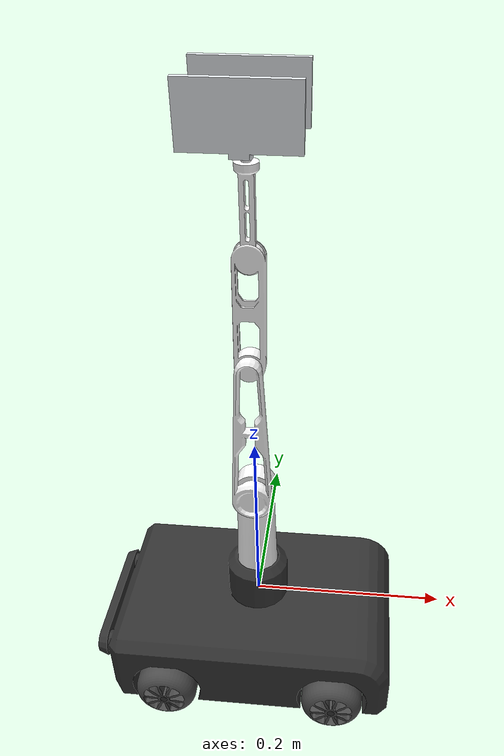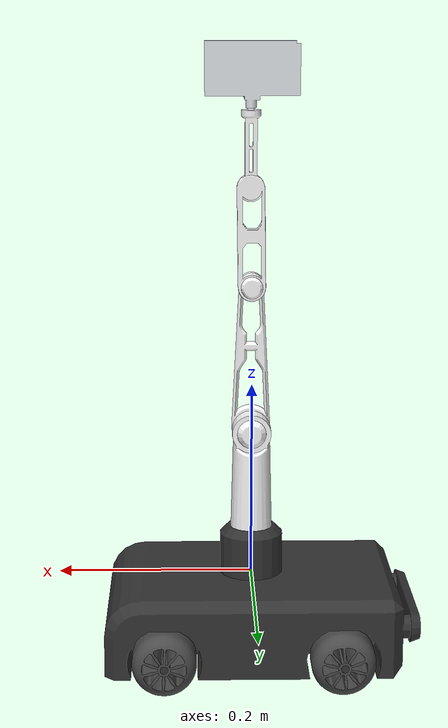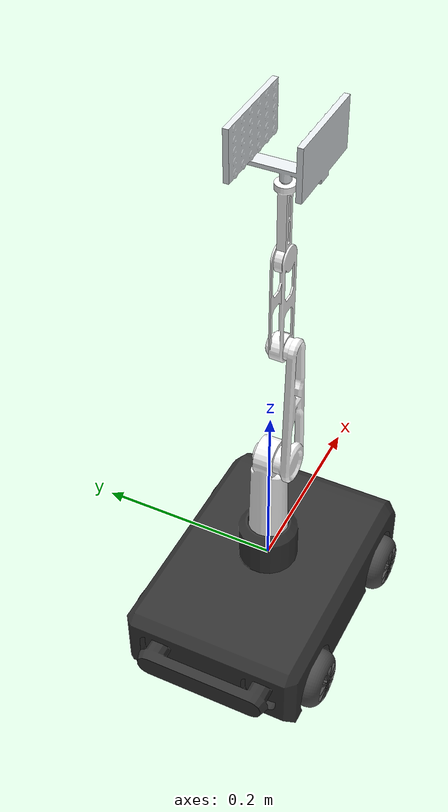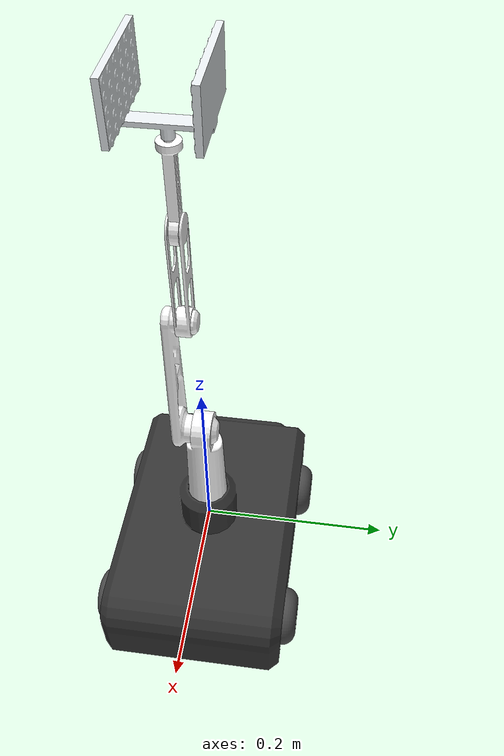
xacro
<?xml version="1.0" ?>
<robot
  name="project2_pkg" xmlns:xacro="http://ros.org/wiki/xacro">

  <xacro:arg name="controller_config_path" default=""/>

  <xacro:macro name="chassi_color">
    <visual>
    <material>
        <ambient>0.8 0.558823529411765 0.1 1</ambient>
        <diffuse>0.8 0.558823529411765 0.1 1</diffuse>
        <specular>0.1 0.1 0.1 1</specular>
        <emissive>0 0 0 0</emissive>
    </material>
    </visual>
  </xacro:macro>

  <xacro:macro name="wheel_color">
    <visual>
    <material>
        <ambient>0.1 0.1 0.1 1</ambient>
        <diffuse>0.1 0.1 0.1 1</diffuse>
        <specular>0.1 0.1 0.1 1</specular>
        <emissive>0 0 0 0</emissive>
    </material>
    </visual>
  </xacro:macro>

  <xacro:macro name="link1_color">
    <visual>
    <material>
        <ambient>0.8 0.1 0.1 1</ambient>
        <diffuse>0.8 0.1 0.1 1</diffuse>
        <specular>0.1 0.1 0.1 1</specular>
        <emissive>0 0 0 0</emissive>
    </material>
    </visual>
  </xacro:macro>

  <xacro:macro name="link2_color">
    <visual>
    <material>
        <ambient>0.1 0.7 0.7 1</ambient>
        <diffuse>0.1 0.7 0.7 1</diffuse>
        <specular>0.1 0.1 0.1 1</specular>
        <emissive>0 0 0 0</emissive>
    </material>
    </visual>
  </xacro:macro>

  <link
    name="chassi">
    <inertial>
      <origin
        xyz="-0.00273957249813026 0 -0.0358542729676732"
        rpy="0 0 0" />
      <mass
        value="28.1975496713599" />
      <inertia
        ixx="0.0967682251741125"
        ixy="-6.20855073866151E-18"
        ixz="0.00154816882794152"
        iyy="0.213605558592681"
        iyz="-9.22777957284755E-19"
        izz="0.27721568675433" />
    </inertial>
    <visual>
      <origin
        xyz="0 0 0"
        rpy="0 0 0" />
      <geometry>
        <mesh
          filename="package://project2_pkg/meshes/chassi.STL" />
      </geometry>
      <material
        name="">
        <color
          rgba="0.2 0.2 0.2 1" />
      </material>
    </visual>
    <collision>
      <origin
        xyz="0 0 0"
        rpy="0 0 0" />
      <geometry>
        <mesh
          filename="package://project2_pkg/meshes/chassi.STL" />
      </geometry>
    </collision>
  </link>
  <link
    name="flw">
    <inertial>
      <origin
        xyz="-2.08166817117217E-16 -3.92047505570758E-16 -0.025"
        rpy="0 0 0" />
      <mass
        value="0.109315820418966" />
      <inertia
        ixx="5.08403848301778E-05"
        ixy="-1.41368946125236E-21"
        ixz="-4.88406022657881E-20"
        iyy="5.08403848301778E-05"
        iyz="-1.04374504192198E-20"
        izz="6.65918325303455E-05" />
    </inertial>
    <visual>
      <origin
        xyz="0 0 0"
        rpy="0 0 0" />
      <geometry>
        <mesh
          filename="package://project2_pkg/meshes/flw.STL" />
      </geometry>
      <material
        name="">
        <color
          rgba="0.298039215686275 0.298039215686275 0.298039215686275 1" />
      </material>
    </visual>
    <collision>
      <origin xyz="0 0 0" rpy="0 0 0" />
      <geometry>
        <mesh filename="package://project2_pkg/meshes/flw.STL" />
      </geometry>
      <!-- Added friction surface -->
      <surface>
        <friction>
          <ode>
            <mu>1.0</mu>
            <mu2>5.0</mu2>
            <fdir1>0 0 0</fdir1>
            <slip1>0.0</slip1>
            <slip2>0.0</slip2>
          </ode>
          <torsional>
            <coefficient>1.0</coefficient>
            <patch_radius>0.0</patch_radius>
            <surface_radius>0.0</surface_radius>
            <use_patch_radius>true</use_patch_radius>
            <ode>
              <slip>0.0</slip>
            </ode>
          </torsional>
        </friction>
        <contact>
          <ode>
            <soft_cfm>0</soft_cfm>
            <soft_erp>0.2</soft_erp>
            <kp>1e9</kp>
            <kd>1.0</kd>
            <max_vel>0.1</max_vel>
            <min_depth>0.001</min_depth>
          </ode>
        </contact>
        <bounce>
          <restitution_coefficient>0</restitution_coefficient>
          <threshold>1e6</threshold>
        </bounce>
      </surface>
    </collision>
  </link>
  <link
    name="rlw">
    <inertial>
      <origin
        xyz="-3.60822483003176E-16 -2.4459601011273E-16 -0.025"
        rpy="0 0 0" />
      <mass
        value="0.109315820418966" />
      <inertia
        ixx="5.08403848301778E-05"
        ixy="-4.47128279588246E-22"
        ixz="-4.70707831224661E-20"
        iyy="5.08403848301778E-05"
        iyz="1.91692662381799E-20"
        izz="6.65918325303455E-05" />
    </inertial>
    <visual>
      <origin
        xyz="0 0 0"
        rpy="0 0 0" />
      <geometry>
        <mesh
          filename="package://project2_pkg/meshes/rlw.STL" />
      </geometry>
      <material
        name="">
        <color
          rgba="0.298039215686275 0.298039215686275 0.298039215686275 1" />
      </material>
    </visual>
    <collision>
      <origin xyz="0 0 0" rpy="0 0 0" />
      <geometry>
        <mesh filename="package://project2_pkg/meshes/rlw.STL" />
      </geometry>
      <!-- Added friction surface -->
      <surface>
        <friction>
          <ode>
            <mu>1.0</mu>
            <mu2>5.0</mu2>
            <fdir1>0 0 0</fdir1>
            <slip1>0.0</slip1>
            <slip2>0.0</slip2>
          </ode>
          <torsional>
            <coefficient>1.0</coefficient>
            <patch_radius>0.0</patch_radius>
            <surface_radius>0.0</surface_radius>
            <use_patch_radius>true</use_patch_radius>
            <ode>
              <slip>0.0</slip>
            </ode>
          </torsional>
        </friction>
        <contact>
          <ode>
            <soft_cfm>0</soft_cfm>
            <soft_erp>0.2</soft_erp>
            <kp>1e9</kp>
            <kd>1.0</kd>
            <max_vel>0.1</max_vel>
            <min_depth>0.001</min_depth>
          </ode>
        </contact>
        <bounce>
          <restitution_coefficient>0</restitution_coefficient>
          <threshold>1e6</threshold>
        </bounce>
      </surface>
    </collision>
  </link>
  <link
    name="rrw">
    <inertial>
      <origin
        xyz="9.71445146547012E-17 -4.26741975090295E-16 0.025"
        rpy="0 0 0" />
      <mass
        value="0.109315820418966" />
      <inertia
        ixx="5.08403848301778E-05"
        ixy="-9.22254748831782E-21"
        ixz="-4.34376393997599E-20"
        iyy="5.08403848301778E-05"
        iyz="1.89041222569318E-20"
        izz="6.65918325303455E-05" />
    </inertial>
    <visual>
      <origin
        xyz="0 0 0"
        rpy="0 0 0" />
      <geometry>
        <mesh
          filename="package://project2_pkg/meshes/rrw.STL" />
      </geometry>
      <material
        name="">
        <color
          rgba="0.298039215686275 0.298039215686275 0.298039215686275 1" />
      </material>
    </visual>
    <collision>
      <origin xyz="0 0 0" rpy="0 0 0" />
      <geometry>
        <mesh filename="package://project2_pkg/meshes/rrw.STL" />
      </geometry>
      <!-- Added friction surface -->
      <surface>
        <friction>
          <ode>
            <mu>1.0</mu>
            <mu2>5.0</mu2>
            <fdir1>0 0 0</fdir1>
            <slip1>0.0</slip1>
            <slip2>0.0</slip2>
          </ode>
          <torsional>
            <coefficient>1.0</coefficient>
            <patch_radius>0.0</patch_radius>
            <surface_radius>0.0</surface_radius>
            <use_patch_radius>true</use_patch_radius>
            <ode>
              <slip>0.0</slip>
            </ode>
          </torsional>
        </friction>
        <contact>
          <ode>
            <soft_cfm>0</soft_cfm>
            <soft_erp>0.2</soft_erp>
            <kp>1e9</kp>
            <kd>1.0</kd>
            <max_vel>0.1</max_vel>
            <min_depth>0.001</min_depth>
          </ode>
        </contact>
        <bounce>
          <restitution_coefficient>0</restitution_coefficient>
          <threshold>1e6</threshold>
        </bounce>
      </surface>
    </collision>
  </link>
  <link
    name="frw">
    <inertial>
      <origin
        xyz="4.16333634234434E-16 -1.07552855510562E-16 0.025"
        rpy="0 0 0" />
      <mass
        value="0.109315820418966" />
      <inertia
        ixx="5.08403848301778E-05"
        ixy="-6.75672164286764E-22"
        ixz="-3.81073407790736E-20"
        iyy="5.08403848301778E-05"
        iyz="-3.21509152907343E-20"
        izz="6.65918325303455E-05" />
    </inertial>
    <visual>
      <origin
        xyz="0 0 0"
        rpy="0 0 0" />
      <geometry>
        <mesh
          filename="package://project2_pkg/meshes/frw.STL" />
      </geometry>
      <material
        name="">
        <color
          rgba="0.298039215686275 0.298039215686275 0.298039215686275 1" />
      </material>
    </visual>
    <collision>
      <origin xyz="0 0 0" rpy="0 0 0" />
      <geometry>
        <mesh filename="package://project2_pkg/meshes/frw.STL" />
      </geometry>
      <!-- Added friction surface -->
      <surface>
        <friction>
          <ode>
            <mu>1.0</mu>
            <mu2>5.0</mu2>
            <fdir1>0 0 0</fdir1>
            <slip1>0.0</slip1>
            <slip2>0.0</slip2>
          </ode>
          <torsional>
            <coefficient>1.0</coefficient>
            <patch_radius>0.0</patch_radius>
            <surface_radius>0.0</surface_radius>
            <use_patch_radius>true</use_patch_radius>
            <ode>
              <slip>0.0</slip>
            </ode>
          </torsional>
        </friction>
        <contact>
          <ode>
            <soft_cfm>0</soft_cfm>
            <soft_erp>0.2</soft_erp>
            <kp>1e9</kp>
            <kd>1.0</kd>
            <max_vel>0.1</max_vel>
            <min_depth>0.001</min_depth>
          </ode>
        </contact>
        <bounce>
          <restitution_coefficient>0</restitution_coefficient>
          <threshold>1e6</threshold>
        </bounce>
      </surface>
    </collision>
  </link>
  <link
    name="link1">
    <inertial>
      <origin
        xyz="-3.21003580314172E-09 4.26012929446995E-08 0.0677439661630031"
        rpy="0 0 0" />
      <mass
        value="0.341621414343317" />
      <inertia
        ixx="0.000648673582132355"
        ixy="-4.90273211581649E-11"
        ixz="-1.80619345004339E-11"
        iyy="0.000651814897033303"
        iyz="-6.89923725737733E-10"
        izz="7.45993662586312E-05" />
    </inertial>
    <visual>
      <origin
        xyz="0 0 0"
        rpy="0 0 0" />
      <geometry>
        <mesh
          filename="package://project2_pkg/meshes/link1.STL" />
      </geometry>
      <material
        name="">
        <color
          rgba="1 1 1 1" />
      </material>
    </visual>
    <collision>
      <origin
        xyz="0 0 0"
        rpy="0 0 0" />
      <geometry>
        <mesh
          filename="package://project2_pkg/meshes/link1.STL" />
      </geometry>
    </collision>
  </link>
  <link
    name="link2">
    <inertial>
      <origin
        xyz="-4.70220331422189E-10 0.0466681240720445 -0.0104201481503879"
        rpy="0 0 0" />
      <mass
        value="0.10888313052851" />
      <inertia
        ixx="0.000419192112350754"
        ixy="3.46492647492807E-12"
        ixz="1.3319581537547E-13"
        iyy="2.51973970216068E-05"
        iyz="1.81952364827832E-05"
        izz="0.000412191041793907" />
    </inertial>
    <visual>
      <origin
        xyz="0 0 0"
        rpy="0 0 0" />
      <geometry>
        <mesh
          filename="package://project2_pkg/meshes/link2.STL" />
      </geometry>
      <material
        name="">
        <color
          rgba="1 1 1 1" />
      </material>
    </visual>
    <collision>
      <origin
        xyz="0 0 0"
        rpy="0 0 0" />
      <geometry>
        <mesh
          filename="package://project2_pkg/meshes/link2.STL" />
      </geometry>
    </collision>
  </link>
  <link
    name="link3">
    <inertial>
      <origin
        xyz="-0.00116814839173087 0.0597908763668615 0.00120341101632475"
        rpy="0 0 0" />
      <mass
        value="0.0221942373570941" />
      <inertia
        ixx="4.04580709256211E-05"
        ixy="5.79817985829224E-07"
        ixz="1.51325476356364E-13"
        iyy="2.14599324989843E-06"
        iyz="-8.01720827635084E-12"
        izz="4.15261418916344E-05" />
    </inertial>
    <visual>
      <origin
        xyz="0 0 0"
        rpy="0 0 0" />
      <geometry>
        <mesh
          filename="package://project2_pkg/meshes/link3.STL" />
      </geometry>
      <material
        name="">
        <color
          rgba="1 1 1 1" />
      </material>
    </visual>
    <collision>
      <origin
        xyz="0 0 0"
        rpy="0 0 0" />
      <geometry>
        <mesh
          filename="package://project2_pkg/meshes/link3.STL" />
      </geometry>
    </collision>
  </link>
  <link
    name="link4">
    <inertial>
      <origin
        xyz="-1.73472347597681E-17 0.0443885505101979 1.04083408558608E-17"
        rpy="0 0 0" />
      <mass
        value="0.0165310476988243" />
      <inertia
        ixx="1.41637233039097E-05"
        ixy="-6.13703140395745E-21"
        ixz="7.08782812029796E-23"
        iyy="6.27395853241919E-07"
        iyz="-4.07242755715004E-22"
        izz="1.44343317447862E-05" />
    </inertial>
    <visual>
      <origin
        xyz="0 0 0"
        rpy="0 0 0" />
      <geometry>
        <mesh
          filename="package://project2_pkg/meshes/link4.STL" />
      </geometry>
      <material
        name="">
        <color
          rgba="1 1 1 1" />
      </material>
    </visual>
    <collision>
      <origin
        xyz="0 0 0"
        rpy="0 0 0" />
      <geometry>
        <mesh
          filename="package://project2_pkg/meshes/link4.STL" />
      </geometry>
    </collision>
  </link>
  <link
    name="ef">
    <inertial>
      <origin
        xyz="0.000101260767846219 -4.85722573273506E-17 -0.031758493484343"
        rpy="0 0 0" />
      <mass
        value="0.155748244072589" />
      <inertia
        ixx="0.000191499189668445"
        ixy="-1.73105957741762E-19"
        ixz="3.08900711374907E-08"
        iyy="0.000141197130023078"
        iyz="2.09102408995788E-20"
        izz="0.00025525841201498" />
    </inertial>
    <visual>
      <origin
        xyz="0 0 0"
        rpy="0 0 0" />
      <geometry>
        <mesh
          filename="package://project2_pkg/meshes/ef.STL" />
      </geometry>
      <material
        name="">
        <color
          rgba="0.898039215686275 0.917647058823529 0.929411764705882 1" />
      </material>
    </visual>
    <collision>
      <origin
        xyz="0 0 0"
        rpy="0 0 0" />
      <geometry>
        <mesh
          filename="package://project2_pkg/meshes/ef.STL" />
      </geometry>
    </collision>
  </link>

  <joint
    name="flw_joint"
    type="continuous">
    <origin
      xyz="0.09 0.115 -0.063"
      rpy="1.5708 0 3.1416" />
    <parent
      link="chassi" />
    <child
      link="flw" />
    <axis
      xyz="0 0 1" />
  </joint>
  <joint
    name="rlw_joint"
    type="continuous">
    <origin
      xyz="-0.09 0.115 -0.063"
      rpy="1.5708 0 3.1416" />
    <parent
      link="chassi" />
    <child
      link="rlw" />
    <axis
      xyz="0 0 1" />
  </joint>
  <joint
    name="rrw_joint"
    type="continuous">
    <origin
      xyz="-0.09 -0.115 -0.063"
      rpy="1.5708 0 3.1416" />
    <parent
      link="chassi" />
    <child
      link="rrw" />
    <axis
      xyz="0 0 1" />
  </joint>
  <joint
    name="frw_joint"
    type="continuous">
    <origin
      xyz="0.09 -0.115 -0.063"
      rpy="1.5708 0 3.1416" />
    <parent
      link="chassi" />
    <child
      link="frw" />
    <axis
      xyz="0 0 1" />
  </joint>
  <joint
    name="link1_joint"
    type="revolute">
    <origin
      xyz="0 0 0"
      rpy="0 0 3.1416" />
    <parent
      link="chassi" />
    <child
      link="link1" />
    <axis
      xyz="0 0 1" />
    <limit
      lower="-3.14"
      upper="3.14"
      effort="1"
      velocity="0" />
  </joint>
  <joint
    name="link2_joint"
    type="revolute">
    <origin
      xyz="0 0.00375 0.15"
      rpy="1.5708 0 0" />
    <parent
      link="link1" />
    <child
      link="link2" />
    <axis
      xyz="0.15203 0 0.98838" />
    <limit
      lower="-3.14"
      upper="3.14"
      effort="1"
      velocity="0" />
  </joint>
  <joint
    name="link3_joint"
    type="revolute">
    <origin
      xyz="0 0.14983 -0.0069534"
      rpy="0 0 0" />
    <parent
      link="link2" />
    <child
      link="link3" />
    <axis
      xyz="0 0 -1" />
    <limit
      lower="-3.14"
      upper="3.14"
      effort="1"
      velocity="0" />
  </joint>
  <joint
    name="link4_joint"
    type="revolute">
    <origin
      xyz="-0.0014042 0.10017 0.0012034"
      rpy="0 0 0" />
    <parent
      link="link3" />
    <child
      link="link4" />
    <axis
      xyz="0 0 -1" />
    <limit
      lower="-3.14"
      upper="3.14"
      effort="1"
      velocity="0" />
  </joint>
  <joint
    name="ef_joint"
    type="revolute">
    <origin
      xyz="0 0.085 0"
      rpy="-1.5708 0 -3.1416" />
    <parent
      link="link4" />
    <child
      link="ef" />
    <axis
      xyz="-0.9462 0.14554 0.28902" />
    <limit
      lower="-3.14"
      upper="3.14"
      effort="1"
      velocity="0" />
  </joint>

  <ros2_control name="GazeboSystem" type="system">
    <hardware>
      <plugin>gazebo_ros2_control/GazeboSystem</plugin>
    </hardware>

    <joint name="flw_joint">
      <command_interface name="velocity">
        <param name="min">-100000.0</param>
        <param name="max">100000.0</param>
      </command_interface>
      <state_interface name="position"/>
      <state_interface name="velocity"/>
    </joint>
    <joint name="frw_joint">
      <command_interface name="velocity">
        <param name="min">-100000.0</param>
        <param name="max">100000.0</param>
      </command_interface>
      <state_interface name="position"/>
      <state_interface name="velocity"/>
    </joint>
    <joint name="rlw_joint">
      <command_interface name="velocity">
        <param name="min">-100000.0</param>
        <param name="max">100000.0</param>
      </command_interface>
      <state_interface name="position"/>
      <state_interface name="velocity"/>
    </joint>
    <joint name="rrw_joint">
      <command_interface name="velocity">
        <param name="min">-100000.0</param>
        <param name="max">100000.0</param>
      </command_interface>
      <state_interface name="position"/>
      <state_interface name="velocity"/>
    </joint>

    <joint name="link1_joint">
      <command_interface name="position">
        <param name="min">-3.14</param>
        <param name="max">3.14</param>
        <param name="initial_value">-0.14</param>
      </command_interface>
      <state_interface name="position"/>
      <state_interface name="velocity"/>
    </joint>
    <joint name="link2_joint">
      <command_interface name="position">
        <param name="min">-3.14</param>
        <param name="max">3.14</param>
        <param name="initial_value">0.53</param>
      </command_interface>
      <state_interface name="position"/>
      <state_interface name="velocity"/>
    </joint>
    <joint name="link3_joint">
      <command_interface name="position">
        <param name="min">-3.14</param>
        <param name="max">3.14</param>
        <param name="initial_value">2.43</param>
      </command_interface>
      <state_interface name="position"/>
      <state_interface name="velocity"/>
    </joint>
    <joint name="link4_joint">
      <command_interface name="position">
        <param name="min">-3.14</param>
        <param name="max">3.14</param>
        <param name="initial_value">-0.615</param>
      </command_interface>
      <state_interface name="position"/>
      <state_interface name="velocity"/>
    </joint>
    <joint name="ef_joint">
      <command_interface name="position">
        <param name="min">-3.14</param>
        <param name="max">3.14</param>
        <param name="initial_value">1.69</param>
      </command_interface>
      <state_interface name="position"/>
      <state_interface name="velocity"/>
    </joint>
  </ros2_control>

  <gazebo>
    <plugin filename="libgazebo_ros2_control.so" name="gazebo_ros2_control">
      <parameters>$(arg controller_config_path)</parameters>

      <param name="use_global_robot_description">true</param>
      <ros>
          <param name="use_sim_time">true</param>
      </ros>
    </plugin>
  </gazebo>

  <gazebo reference="chassi">
    <sensor name="lidar" type="ray">
      <pose>0.0 0.0 0.0 0 0 0</pose>
      <always_on>true</always_on>
      <visualize>true</visualize>
      <update_rate>5</update_rate>
      <ray>
        <scan>
          <horizontal>
            <samples>360</samples>
            <resolution>1.00000</resolution>
            <min_angle>0.000000</min_angle>
            <max_angle>6.280000</max_angle>
          </horizontal>
        </scan>
        <range>
          <min>0.120000</min>
          <max>3.5</max>
          <resolution>0.015000</resolution>
        </range>
        <noise>
          <type>gaussian</type>
          <mean>0.0</mean>
          <stddev>0.01</stddev>
        </noise>
      </ray>
      <plugin name="scan" filename="libgazebo_ros_ray_sensor.so">
        <ros>
          <remapping>~/out:=scan</remapping>
        </ros>
        <output_type>sensor_msgs/LaserScan</output_type>
        <frame_name>chassi</frame_name>
      </plugin>
    </sensor>
  </gazebo>

  <gazebo>
    <plugin name='vacuum_gripper' filename='libgazebo_ros_vacuum_gripper.so'>
      <ros>
        <namespace>/vacuum_gripper</namespace>
        <remapping>switch:=custom_switch</remapping>
        <remapping>grasping:=custom_grasping</remapping>
      </ros>
      <link_name>ef</link_name>
      <max_distance>30.0</max_distance>
      <fixed>ground_plane</fixed>
      <fixed>wall</fixed>
    </plugin>
  </gazebo>

  <gazebo>
    <plugin filename="libodometry_plugin.so" name="odometry_plugin">
      <frame>ef</frame>
      <world_frame>fixed_world</world_frame>
    </plugin>
  </gazebo>

  <gazebo reference="chassi">
      <xacro:chassi_color />
  </gazebo>
  <gazebo reference="flw">
      <xacro:wheel_color />
  </gazebo>
  <gazebo reference="frw">
      <xacro:wheel_color />
  </gazebo>
  <gazebo reference="rlw">
      <xacro:wheel_color />
  </gazebo>
  <gazebo reference="rrw">
      <xacro:wheel_color />
  </gazebo>
  <gazebo reference="link1">
      <xacro:link1_color />
  </gazebo>
  <gazebo reference="link2">
      <xacro:link1_color />
  </gazebo>
  <gazebo reference="link3">
      <xacro:link1_color />
  </gazebo>
  <gazebo reference="link4">
      <xacro:link1_color />
  </gazebo>
  <gazebo reference="ef">
      <xacro:wheel_color />
  </gazebo>

</robot>
